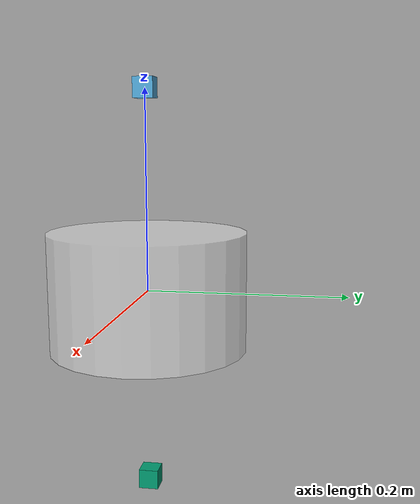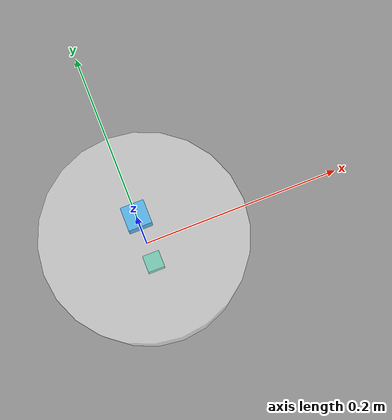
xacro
<?xml version="1.0"?>
<robot xmlns:xacro="http://www.ros.org/wiki/xacro" name="first_robot">
    <!-- 声明 base 模块 -->
    <xacro:macro name="base_link" params="length radius">
        <link name="base_link">
            <visual>
                <origin xyz="0 0 0" rpy="0 0 0" />
                <geometry>
                    <cylinder length="${length}" radius="${radius}" />
                </geometry>
                <material name="white">
                    <color rgba="1.0 1.0 1.0 0.5" />
                </material>
            </visual>
        </link>
    </xacro:macro>
    <!-- 声明 IMU 模块 -->
    <xacro:macro name="imu_link" params="imu_name xyz">
        <link name="${imu_name}_link">
            <visual>
                <origin xyz="0 0 0" rpy="0 0 0" />
                <geometry>
                    <box size="0.02 0.02 0.02" />
                </geometry>
            </visual>
            <material name="black">
                <color rgba="0.0 0.0 0.0 0.5" />
            </material>
        </link>
        <joint name="${imu_name}_joint" type="fixed">
            <parent link="base_link" />
            <child link="${imu_name}_link" />
            <origin xyz="${xyz}" />
        </joint>
    </xacro:macro>
    <!-- 宏定义：传递参数调用 base_link 模块 -->
    <xacro:base_link length="0.12" radius="0.1" />
    <!-- xacro:宏名称 调用宏，再传入不同具体的名称和参数 -->
    <xacro:imu_link imu_name="imu_up" xyz="0 0 0.2" />
    <xacro:imu_link imu_name="imu_down" xyz="0 0 -0.2" />
</robot>
